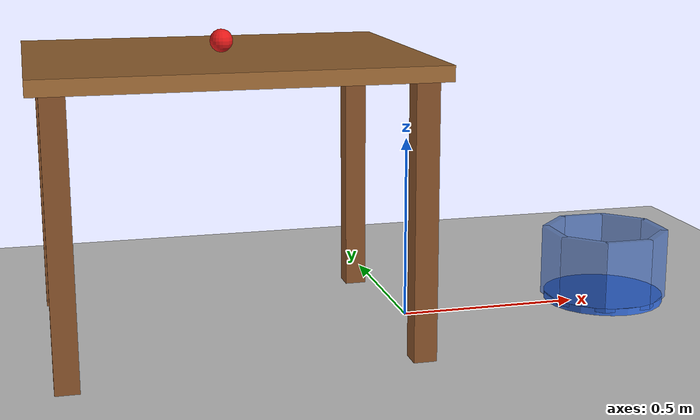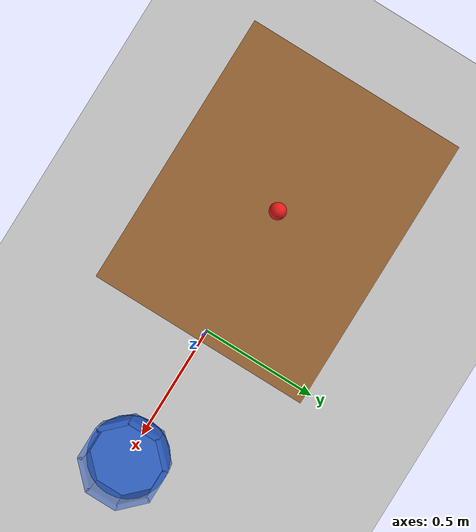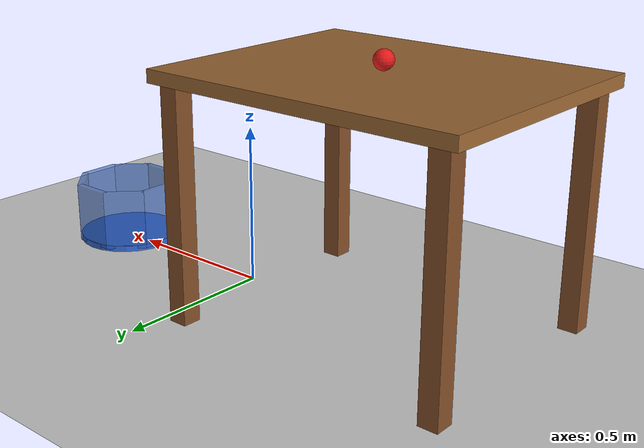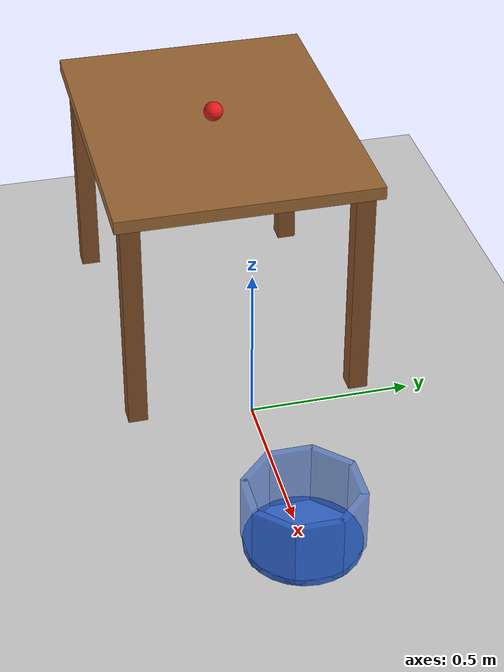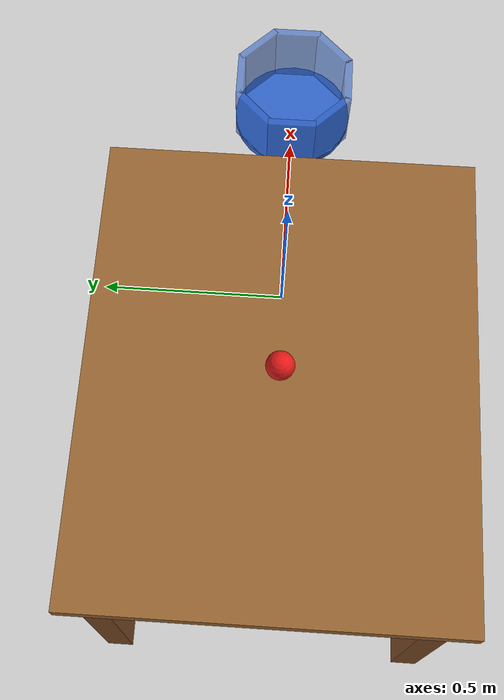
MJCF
<mujoco model="ball_off_table_into_bucket">
  <option timestep="0.002" gravity="0 0 -9.81"/>
  <worldbody>
    <light name="sun" pos="0 0 3" dir="0 0 -1" directional="true"/>
    <geom name="floor" type="plane" size="3 3 0.1" pos="0 0 0" rgba="0.8 0.8 0.8 1"/>

    <body name="table" pos="0 0 0">
      <geom name="table_top" type="box" size="0.5 0.4 0.02" pos="-0.5 0 0.73" rgba="0.6 0.4 0.2 1"/>
      <geom name="table_leg1" type="box" size="0.03 0.03 0.355" pos="-0.06 0.35 0.355" rgba="0.5 0.3 0.15 1"/>
      <geom name="table_leg2" type="box" size="0.03 0.03 0.355" pos="-0.06 -0.35 0.355" rgba="0.5 0.3 0.15 1"/>
      <geom name="table_leg3" type="box" size="0.03 0.03 0.355" pos="-0.94 0.35 0.355" rgba="0.5 0.3 0.15 1"/>
      <geom name="table_leg4" type="box" size="0.03 0.03 0.355" pos="-0.94 -0.35 0.355" rgba="0.5 0.3 0.15 1"/>
    </body>

    <body name="bucket" pos="0.6 0 0">
      <geom name="bucket_base" type="cylinder" size="0.17 0.01" pos="0 0 0.01" condim="6" friction="1 0.01 0.005" rgba="0.2 0.4 0.8 1"/>
      <geom name="bucket_wall0" type="box" size="0.01 0.068 0.1" pos="0.155 0 0.11" euler="0 0 0" rgba="0.2 0.4 0.8 0.6"/>
      <geom name="bucket_wall1" type="box" size="0.01 0.068 0.1" pos="0.1096 0.1096 0.11" euler="0 0 45" rgba="0.2 0.4 0.8 0.6"/>
      <geom name="bucket_wall2" type="box" size="0.01 0.068 0.1" pos="0 0.155 0.11" euler="0 0 90" rgba="0.2 0.4 0.8 0.6"/>
      <geom name="bucket_wall3" type="box" size="0.01 0.068 0.1" pos="-0.1096 0.1096 0.11" euler="0 0 135" rgba="0.2 0.4 0.8 0.6"/>
      <geom name="bucket_wall4" type="box" size="0.01 0.068 0.1" pos="-0.155 0 0.11" euler="0 0 180" rgba="0.2 0.4 0.8 0.6"/>
      <geom name="bucket_wall5" type="box" size="0.01 0.068 0.1" pos="-0.1096 -0.1096 0.11" euler="0 0 225" rgba="0.2 0.4 0.8 0.6"/>
      <geom name="bucket_wall6" type="box" size="0.01 0.068 0.1" pos="0 -0.155 0.11" euler="0 0 270" rgba="0.2 0.4 0.8 0.6"/>
      <geom name="bucket_wall7" type="box" size="0.01 0.068 0.1" pos="0.1096 -0.1096 0.11" euler="0 0 315" rgba="0.2 0.4 0.8 0.6"/>
    </body>

    <body name="ball" pos="-0.5 0 0.78">
      <freejoint name="ball_free"/>
      <geom name="ball" type="sphere" size="0.03" rgba="0.9 0.1 0.1 1"/>
    </body>
  </worldbody>

  <keyframe>
    <key name="start" qpos="-0.5 0 0.78 1 0 0 0" qvel="1.52 0 0 0 50.667 0"/>
  </keyframe>
</mujoco>
